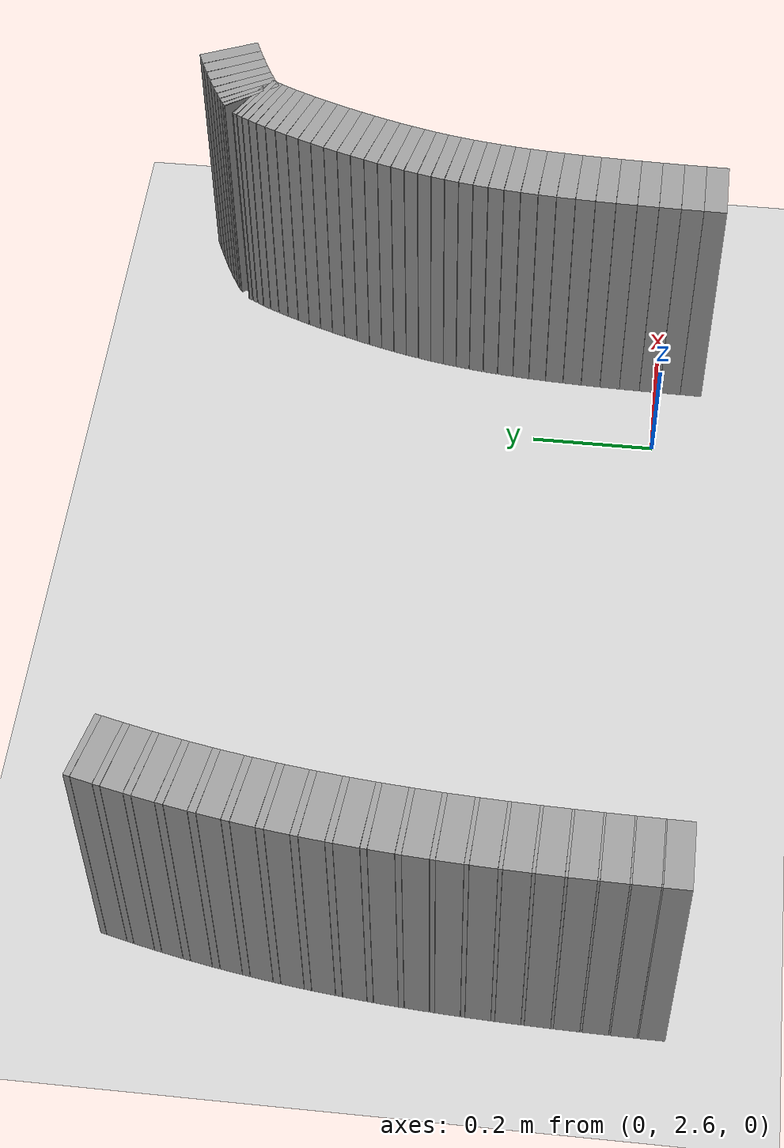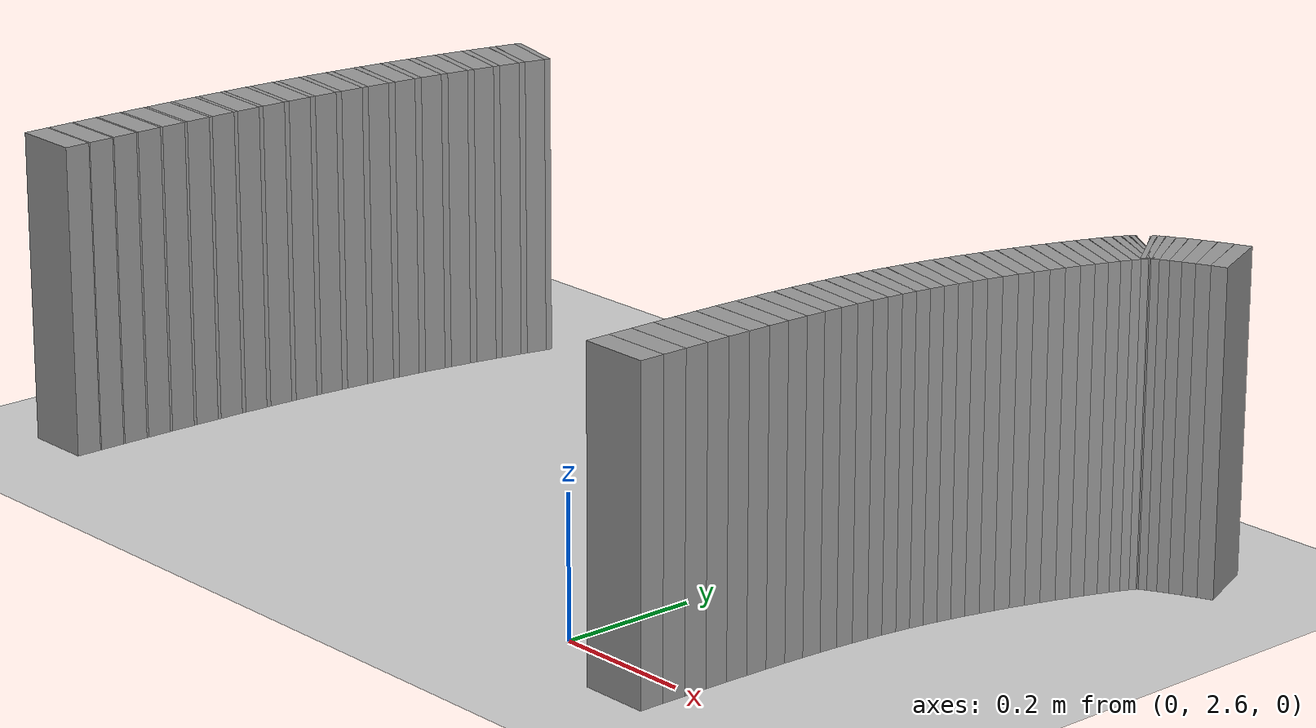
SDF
<sdf version="1.6">
 <world name="default">
  <include><uri>model://ground_plane</uri></include>
  <include><uri>model://sun</uri></include>
  <model name="wall_901_outward">
   <static>true</static>
   <link name="link">
    <collision name="collision">
     <geometry><box><size>0.022596866350349888 0.1 0.45</size></box></geometry>
    </collision>
    <visual name="visual">
     <geometry><box><size>0.022596866350349888 0.1 0.45</size></box></geometry>
     <material>
      <script><uri>file://media/materials/scripts/gazebo.material</uri><name>Gazebo/Gray</name></script>
     </material>
    </visual>
   </link>
   <pose>0.41239674245466185 3.35695061110063 0.225 0 0 -2.737331393825376</pose>
  </model>
  <model name="wall_902_outward">
   <static>true</static>
   <link name="link">
    <collision name="collision">
     <geometry><box><size>0.02105330743478873 0.1 0.45</size></box></geometry>
    </collision>
    <visual name="visual">
     <geometry><box><size>0.02105330743478873 0.1 0.45</size></box></geometry>
     <material>
      <script><uri>file://media/materials/scripts/gazebo.material</uri><name>Gazebo/Gray</name></script>
     </material>
    </visual>
   </link>
   <pose>0.3924247515282354 3.3481531154860154 0.225 0 0 -2.7152350687716185</pose>
  </model>
  <model name="wall_903_outward">
   <static>true</static>
   <link name="link">
    <collision name="collision">
     <geometry><box><size>0.019233025957767963 0.1 0.45</size></box></geometry>
    </collision>
    <visual name="visual">
     <geometry><box><size>0.019233025957767963 0.1 0.45</size></box></geometry>
     <material>
      <script><uri>file://media/materials/scripts/gazebo.material</uri><name>Gazebo/Gray</name></script>
     </material>
    </visual>
   </link>
   <pose>0.3741773984050438 3.339624981435068 0.225 0 0 -2.692526856154919</pose>
  </model>
  <model name="wall_904_outward">
   <static>true</static>
   <link name="link">
    <collision name="collision">
     <geometry><box><size>0.01713305821972316 0.1 0.45</size></box></geometry>
    </collision>
    <visual name="visual">
     <geometry><box><size>0.01713305821972316 0.1 0.45</size></box></geometry>
     <material>
      <script><uri>file://media/materials/scripts/gazebo.material</uri><name>Gazebo/Gray</name></script>
     </material>
    </visual>
   </link>
   <pose>0.3578879541564204 3.3315484569999003 0.225 0 0 -2.6686969031732763</pose>
  </model>
  <model name="wall_905_outward">
   <static>true</static>
   <link name="link">
    <collision name="collision">
     <geometry><box><size>0.014756236926201214 0.1 0.45</size></box></geometry>
    </collision>
    <visual name="visual">
     <geometry><box><size>0.014756236926201214 0.1 0.45</size></box></geometry>
     <material>
      <script><uri>file://media/materials/scripts/gazebo.material</uri><name>Gazebo/Gray</name></script>
     </material>
    </visual>
   </link>
   <pose>0.3437809723634252 3.3241198784027364 0.225 0 0 -2.643204907184068</pose>
  </model>
  <model name="wall_906_outward">
   <static>true</static>
   <link name="link">
    <collision name="collision">
     <geometry><box><size>0.012143708704817393 0.1 0.45</size></box></geometry>
    </collision>
    <visual name="visual">
     <geometry><box><size>0.012143708704817393 0.1 0.45</size></box></geometry>
     <material>
      <script><uri>file://media/materials/scripts/gazebo.material</uri><name>Gazebo/Gray</name></script>
     </material>
    </visual>
   </link>
   <pose>0.33204960698667035 3.3175439809606386 0.225 0 0 -2.615490224212202</pose>
  </model>
  <model name="wall_907_outward">
   <static>true</static>
   <link name="link">
    <collision name="collision">
     <geometry><box><size>0.009383032471270836 0.1 0.45</size></box></geometry>
    </collision>
    <visual name="visual">
     <geometry><box><size>0.009383032471270836 0.1 0.45</size></box></geometry>
     <material>
      <script><uri>file://media/materials/scripts/gazebo.material</uri><name>Gazebo/Gray</name></script>
     </material>
    </visual>
   </link>
   <pose>0.3228152456745705 3.312016740172933 0.225 0 0 -2.5850884539471894</pose>
  </model>
  <model name="wall_908_outward">
   <static>true</static>
   <link name="link">
    <collision name="collision">
     <geometry><box><size>0.006567193483375637 0.1 0.45</size></box></geometry>
    </collision>
    <visual name="visual">
     <geometry><box><size>0.006567193483375637 0.1 0.45</size></box></geometry>
     <material>
      <script><uri>file://media/materials/scripts/gazebo.material</uri><name>Gazebo/Gray</name></script>
     </material>
    </visual>
   </link>
   <pose>0.31610305018646856 3.307711900378005 0.225 0 0 -2.551659877978313</pose>
  </model>
  <model name="wall_909_outward">
   <static>true</static>
   <link name="link">
    <collision name="collision">
     <geometry><box><size>5.8517495426354484e-05 0.1 0.45</size></box></geometry>
    </collision>
    <visual name="visual">
     <geometry><box><size>5.8517495426354484e-05 0.1 0.45</size></box></geometry>
     <material>
      <script><uri>file://media/materials/scripts/gazebo.material</uri><name>Gazebo/Gray</name></script>
     </material>
    </visual>
   </link>
   <pose>0.31335075308378557 3.305868061194558 0.225 0 0 -2.514983812050908</pose>
  </model>
  <model name="wall_910_outward">
   <static>true</static>
   <link name="link">
    <collision name="collision">
     <geometry><box><size>0.00033343279964273206 0.1 0.45</size></box></geometry>
    </collision>
    <visual name="visual">
     <geometry><box><size>0.00033343279964273206 0.1 0.45</size></box></geometry>
     <material>
      <script><uri>file://media/materials/scripts/gazebo.material</uri><name>Gazebo/Gray</name></script>
     </material>
    </visual>
   </link>
   <pose>0.3132395574453338 3.30570899221952 0.225 0 0 -2.123295347509265</pose>
  </model>
  <model name="wall_911_outward">
   <static>true</static>
   <link name="link">
    <collision name="collision">
     <geometry><box><size>0.006385380744075722 0.1 0.45</size></box></geometry>
    </collision>
    <visual name="visual">
     <geometry><box><size>0.006385380744075722 0.1 0.45</size></box></geometry>
     <material>
      <script><uri>file://media/materials/scripts/gazebo.material</uri><name>Gazebo/Gray</name></script>
     </material>
    </visual>
   </link>
   <pose>0.31157509559732816 3.3027910314788933 0.225 0 0 -2.0874004427337227</pose>
  </model>
  <model name="wall_912_outward">
   <static>true</static>
   <link name="link">
    <collision name="collision">
     <geometry><box><size>0.008977632941338609 0.1 0.45</size></box></geometry>
    </collision>
    <visual name="visual">
     <geometry><box><size>0.008977632941338609 0.1 0.45</size></box></geometry>
     <material>
      <script><uri>file://media/materials/scripts/gazebo.material</uri><name>Gazebo/Gray</name></script>
     </material>
    </visual>
   </link>
   <pose>0.30790882375972006 3.2960420393448526 0.225 0 0 -2.0549357301943543</pose>
  </model>
  <model name="wall_913_outward">
   <static>true</static>
   <link name="link">
    <collision name="collision">
     <geometry><box><size>0.011512095864613698 0.1 0.45</size></box></geometry>
    </collision>
    <visual name="visual">
     <geometry><box><size>0.011512095864613698 0.1 0.45</size></box></geometry>
     <material>
      <script><uri>file://media/materials/scripts/gazebo.material</uri><name>Gazebo/Gray</name></script>
     </material>
    </visual>
   </link>
   <pose>0.30328947688679553 3.2868988953667255 0.225 0 0 -2.025888254361011</pose>
  </model>
  <model name="wall_914_outward">
   <static>true</static>
   <link name="link">
    <collision name="collision">
     <geometry><box><size>0.013911058944585594 0.1 0.45</size></box></geometry>
    </collision>
    <visual name="visual">
     <geometry><box><size>0.013911058944585594 0.1 0.45</size></box></geometry>
     <material>
      <script><uri>file://media/materials/scripts/gazebo.material</uri><name>Gazebo/Gray</name></script>
     </material>
    </visual>
   </link>
   <pose>0.2978644702907151 3.275404252363166 0.225 0 0 -2.000070135066954</pose>
  </model>
  <model name="wall_915_outward">
   <static>true</static>
   <link name="link">
    <collision name="collision">
     <geometry><box><size>0.016108205087630497 0.1 0.45</size></box></geometry>
    </collision>
    <visual name="visual">
     <geometry><box><size>0.016108205087630497 0.1 0.45</size></box></geometry>
     <material>
      <script><uri>file://media/materials/scripts/gazebo.material</uri><name>Gazebo/Gray</name></script>
     </material>
    </visual>
   </link>
   <pose>0.2917851040718751 3.2616819621561666 0.225 0 0 -1.977273795379586</pose>
  </model>
  <model name="wall_916_outward">
   <static>true</static>
   <link name="link">
    <collision name="collision">
     <geometry><box><size>0.018050668148949803 0.1 0.45</size></box></geometry>
    </collision>
    <visual name="visual">
     <geometry><box><size>0.018050668148949803 0.1 0.45</size></box></geometry>
     <material>
      <script><uri>file://media/materials/scripts/gazebo.material</uri><name>Gazebo/Gray</name></script>
     </material>
    </visual>
   </link>
   <pose>0.2851998278615824 3.2459240479868035 0.225 0 0 -1.9571510241263168</pose>
  </model>
  <model name="wall_917_outward">
   <static>true</static>
   <link name="link">
    <collision name="collision">
     <geometry><box><size>0.01970030929350284 0.1 0.45</size></box></geometry>
    </collision>
    <visual name="visual">
     <geometry><box><size>0.01970030929350284 0.1 0.45</size></box></geometry>
     <material>
      <script><uri>file://media/materials/scripts/gazebo.material</uri><name>Gazebo/Gray</name></script>
     </material>
    </visual>
   </link>
   <pose>0.2782502250788681 3.228375289012065 0.225 0 0 -1.9393549917008372</pose>
  </model>
  <model name="wall_918_outward">
   <static>true</static>
   <link name="link">
    <collision name="collision">
     <geometry><box><size>0.021024766863608067 0.1 0.45</size></box></geometry>
    </collision>
    <visual name="visual">
     <geometry><box><size>0.021024766863608067 0.1 0.45</size></box></geometry>
     <material>
      <script><uri>file://media/materials/scripts/gazebo.material</uri><name>Gazebo/Gray</name></script>
     </material>
    </visual>
   </link>
   <pose>0.2710708051794596 3.209321086457781 0.225 0 0 -1.9234324250133157</pose>
  </model>
  <model name="wall_919_outward">
   <static>true</static>
   <link name="link">
    <collision name="collision">
     <geometry><box><size>0.02201623335345695 0.1 0.45</size></box></geometry>
    </collision>
    <visual name="visual">
     <geometry><box><size>0.02201623335345695 0.1 0.45</size></box></geometry>
     <material>
      <script><uri>file://media/materials/scripts/gazebo.material</uri><name>Gazebo/Gray</name></script>
     </material>
    </visual>
   </link>
   <pose>0.2637883889834097 3.1890708022095042 0.225 0 0 -1.9089332878310066</pose>
  </model>
  <model name="wall_920_outward">
   <static>true</static>
   <link name="link">
    <collision name="collision">
     <geometry><box><size>0.02268796565250356 0.1 0.45</size></box></geometry>
    </collision>
    <visual name="visual">
     <geometry><box><size>0.02268796565250356 0.1 0.45</size></box></geometry>
     <material>
      <script><uri>file://media/materials/scripts/gazebo.material</uri><name>Gazebo/Gray</name></script>
     </material>
    </visual>
   </link>
   <pose>0.25651905092370275 3.167934338623913 0.225 0 0 -1.8953666653116565</pose>
  </model>
  <model name="wall_921_outward">
   <static>true</static>
   <link name="link">
    <collision name="collision">
     <geometry><box><size>0.02305148211889506 0.1 0.45</size></box></geometry>
    </collision>
    <visual name="visual">
     <geometry><box><size>0.02305148211889506 0.1 0.45</size></box></geometry>
     <material>
      <script><uri>file://media/materials/scripts/gazebo.material</uri><name>Gazebo/Gray</name></script>
     </material>
    </visual>
   </link>
   <pose>0.24936891116997362 3.1462115982767314 0.225 0 0 -1.8822998094263723</pose>
  </model>
  <model name="wall_922_outward">
   <static>true</static>
   <link name="link">
    <collision name="collision">
     <geometry><box><size>0.02313152804479884 0.1 0.45</size></box></geometry>
    </collision>
    <visual name="visual">
     <geometry><box><size>0.02313152804479884 0.1 0.45</size></box></geometry>
     <material>
      <script><uri>file://media/materials/scripts/gazebo.material</uri><name>Gazebo/Gray</name></script>
     </material>
    </visual>
   </link>
   <pose>0.24243566142224462 3.124186046719479 0.225 0 0 -1.8692406733208606</pose>
  </model>
  <model name="wall_923_outward">
   <static>true</static>
   <link name="link">
    <collision name="collision">
     <geometry><box><size>0.022994218521434108 0.1 0.45</size></box></geometry>
    </collision>
    <visual name="visual">
     <geometry><box><size>0.022994218521434108 0.1 0.45</size></box></geometry>
     <material>
      <script><uri>file://media/materials/scripts/gazebo.material</uri><name>Gazebo/Gray</name></script>
     </material>
    </visual>
   </link>
   <pose>0.23580250807824732 3.102098191595596 0.225 0 0 -1.8557900986289473</pose>
  </model>
  <model name="wall_924_outward">
   <static>true</static>
   <link name="link">
    <collision name="collision">
     <geometry><box><size>0.022702220539631838 0.1 0.45</size></box></geometry>
    </collision>
    <visual name="visual">
     <geometry><box><size>0.022702220539631838 0.1 0.45</size></box></geometry>
     <material>
      <script><uri>file://media/materials/scripts/gazebo.material</uri><name>Gazebo/Gray</name></script>
     </material>
    </visual>
   </link>
   <pose>0.22953324804076197 3.0801274985704175 0.225 0 0 -1.841631247528768</pose>
  </model>
  <model name="wall_925_outward">
   <static>true</static>
   <link name="link">
    <collision name="collision">
     <geometry><box><size>0.022331614966666632 0.1 0.45</size></box></geometry>
    </collision>
    <visual name="visual">
     <geometry><box><size>0.022331614966666632 0.1 0.45</size></box></geometry>
     <material>
      <script><uri>file://media/materials/scripts/gazebo.material</uri><name>Gazebo/Gray</name></script>
     </material>
    </visual>
   </link>
   <pose>0.2236720599062773 3.058387463550103 0.225 0 0 -1.8265214145545385</pose>
  </model>
  <model name="wall_926_outward">
   <static>true</static>
   <link name="link">
    <collision name="collision">
     <geometry><box><size>0.02197774465076249 0.1 0.45</size></box></geometry>
    </collision>
    <visual name="visual">
     <geometry><box><size>0.02197774465076249 0.1 0.45</size></box></geometry>
     <material>
      <script><uri>file://media/materials/scripts/gazebo.material</uri><name>Gazebo/Gray</name></script>
     </material>
    </visual>
   </link>
   <pose>0.21824036063666016 3.036909698262149 0.225 0 0 -1.8103521031712857</pose>
  </model>
  <model name="wall_927_outward">
   <static>true</static>
   <link name="link">
    <collision name="collision">
     <geometry><box><size>0.021725701463480032 0.1 0.45</size></box></geometry>
    </collision>
    <visual name="visual">
     <geometry><box><size>0.021725701463480032 0.1 0.45</size></box></geometry>
     <material>
      <script><uri>file://media/materials/scripts/gazebo.material</uri><name>Gazebo/Gray</name></script>
     </material>
    </visual>
   </link>
   <pose>0.21323737790647734 3.015639233272886 0.225 0 0 -1.7931594559181645</pose>
  </model>
  <model name="wall_928_outward">
   <static>true</static>
   <link name="link">
    <collision name="collision">
     <geometry><box><size>0.02164543096430768 0.1 0.45</size></box></geometry>
    </collision>
    <visual name="visual">
     <geometry><box><size>0.02164543096430768 0.1 0.45</size></box></geometry>
     <material>
      <script><uri>file://media/materials/scripts/gazebo.material</uri><name>Gazebo/Gray</name></script>
     </material>
    </visual>
   </link>
   <pose>0.20864600509068432 2.994446198568183 0.225 0 0 -1.7750963639412451</pose>
  </model>
  <model name="wall_929_outward">
   <static>true</static>
   <link name="link">
    <collision name="collision">
     <geometry><box><size>0.021794638171937955 0.1 0.45</size></box></geometry>
    </collision>
    <visual name="visual">
     <geometry><box><size>0.021794638171937955 0.1 0.45</size></box></geometry>
     <material>
      <script><uri>file://media/materials/scripts/gazebo.material</uri><name>Gazebo/Gray</name></script>
     </material>
    </visual>
   </link>
   <pose>0.20443912056908775 2.973138433164868 0.225 0 0 -1.756415182884582</pose>
  </model>
  <model name="wall_930_outward">
   <static>true</static>
   <link name="link">
    <collision name="collision">
     <geometry><box><size>0.022205526378022495 0.1 0.45</size></box></geometry>
    </collision>
    <visual name="visual">
     <geometry><box><size>0.022205526378022495 0.1 0.45</size></box></geometry>
     <material>
      <script><uri>file://media/materials/scripts/gazebo.material</uri><name>Gazebo/Gray</name></script>
     </material>
    </visual>
   </link>
   <pose>0.20058599444439623 2.951479402460767 0.225 0 0 -1.737469219337726</pose>
  </model>
  <model name="wall_931_outward">
   <static>true</static>
   <link name="link">
    <collision name="collision">
     <geometry><box><size>0.022873744378428918 0.1 0.45</size></box></geometry>
    </collision>
    <visual name="visual">
     <geometry><box><size>0.022873744378428918 0.1 0.45</size></box></geometry>
     <material>
      <script><uri>file://media/materials/scripts/gazebo.material</uri><name>Gazebo/Gray</name></script>
     </material>
    </visual>
   </link>
   <pose>0.1970593319743536 2.92921838755029 0.225 0 0 -1.7186375841699517</pose>
  </model>
  <model name="wall_932_outward">
   <static>true</static>
   <link name="link">
    <collision name="collision">
     <geometry><box><size>0.023778288119690603 0.1 0.45</size></box></geometry>
    </collision>
    <visual name="visual">
     <geometry><box><size>0.023778288119690603 0.1 0.45</size></box></geometry>
     <material>
      <script><uri>file://media/materials/scripts/gazebo.material</uri><name>Gazebo/Gray</name></script>
     </material>
    </visual>
   </link>
   <pose>0.19383931766097415 2.9061166821357713 0.225 0 0 -1.700294723006217</pose>
  </model>
  <model name="wall_933_outward">
   <static>true</static>
   <link name="link">
    <collision name="collision">
     <geometry><box><size>0.024868578649172017 0.1 0.45</size></box></geometry>
    </collision>
    <visual name="visual">
     <geometry><box><size>0.024868578649172017 0.1 0.45</size></box></geometry>
     <material>
      <script><uri>file://media/materials/scripts/gazebo.material</uri><name>Gazebo/Gray</name></script>
     </material>
    </visual>
   </link>
   <pose>0.19091428676749078 2.8819707025351127 0.225 0 0 -1.682794281315348</pose>
  </model>
  <model name="wall_934_outward">
   <static>true</static>
   <link name="link">
    <collision name="collision">
     <geometry><box><size>0.026091416947496435 0.1 0.45</size></box></geometry>
    </collision>
    <visual name="visual">
     <geometry><box><size>0.026091416947496435 0.1 0.45</size></box></geometry>
     <material>
      <script><uri>file://media/materials/scripts/gazebo.material</uri><name>Gazebo/Gray</name></script>
     </material>
    </visual>
   </link>
   <pose>0.18827927893455984 2.8566281806164415 0.225 0 0 -1.6663987562147833</pose>
  </model>
  <model name="wall_935_outward">
   <static>true</static>
   <link name="link">
    <collision name="collision">
     <geometry><box><size>0.027393402126610136 0.1 0.45</size></box></geometry>
    </collision>
    <visual name="visual">
     <geometry><box><size>0.027393402126610136 0.1 0.45</size></box></geometry>
     <material>
      <script><uri>file://media/materials/scripts/gazebo.material</uri><name>Gazebo/Gray</name></script>
     </material>
    </visual>
   </link>
   <pose>0.18593201673004534 2.829989744148383 0.225 0 0 -1.6513377699728902</pose>
  </model>
  <model name="wall_936_outward">
   <static>true</static>
   <link name="link">
    <collision name="collision">
     <geometry><box><size>0.028709789672378496 0.1 0.45</size></box></geometry>
    </collision>
    <visual name="visual">
     <geometry><box><size>0.028709789672378496 0.1 0.45</size></box></geometry>
     <material>
      <script><uri>file://media/materials/scripts/gazebo.material</uri><name>Gazebo/Gray</name></script>
     </material>
    </visual>
   </link>
   <pose>0.1838696096548817 2.802014715477411 0.225 0 0 -1.6377536498051013</pose>
  </model>
  <model name="wall_937_outward">
   <static>true</static>
   <link name="link">
    <collision name="collision">
     <geometry><box><size>0.029987319688165086 0.1 0.45</size></box></geometry>
    </collision>
    <visual name="visual">
     <geometry><box><size>0.029987319688165086 0.1 0.45</size></box></geometry>
     <material>
      <script><uri>file://media/materials/scripts/gazebo.material</uri><name>Gazebo/Gray</name></script>
     </material>
    </visual>
   </link>
   <pose>0.18208632624156762 2.772720922516728 0.225 0 0 -1.6257028479287146</pose>
  </model>
  <model name="wall_938_outward">
   <static>true</static>
   <link name="link">
    <collision name="collision">
     <geometry><box><size>0.03119380990762205 0.1 0.45</size></box></geometry>
    </collision>
    <visual name="visual">
     <geometry><box><size>0.03119380990762205 0.1 0.45</size></box></geometry>
     <material>
      <script><uri>file://media/materials/scripts/gazebo.material</uri><name>Gazebo/Gray</name></script>
     </material>
    </visual>
   </link>
   <pose>0.18057140729792528 2.7421683154216336 0.225 0 0 -1.6151839885941528</pose>
  </model>
  <model name="wall_939_outward">
   <static>true</static>
   <link name="link">
    <collision name="collision">
     <geometry><box><size>0.032305340117180316 0.1 0.45</size></box></geometry>
    </collision>
    <visual name="visual">
     <geometry><box><size>0.032305340117180316 0.1 0.45</size></box></geometry>
     <material>
      <script><uri>file://media/materials/scripts/gazebo.material</uri><name>Gazebo/Gray</name></script>
     </material>
    </visual>
   </link>
   <pose>0.17930817851051845 2.7104442036995122 0.225 0 0 -1.6061629282107308</pose>
  </model>
  <model name="wall_940_outward">
   <static>true</static>
   <link name="link">
    <collision name="collision">
     <geometry><box><size>0.033298951209655044 0.1 0.45</size></box></geometry>
    </collision>
    <visual name="visual">
     <geometry><box><size>0.033298951209655044 0.1 0.45</size></box></geometry>
     <material>
      <script><uri>file://media/materials/scripts/gazebo.material</uri><name>Gazebo/Gray</name></script>
     </material>
    </visual>
   </link>
   <pose>0.17827482661066388 2.677658575718694 0.225 0 0 -1.5985608845408543</pose>
  </model>
  <model name="wall_941_outward">
   <static>true</static>
   <link name="link">
    <collision name="collision">
     <geometry><box><size>0.03416466688450906 0.1 0.45</size></box></geometry>
    </collision>
    <visual name="visual">
     <geometry><box><size>0.03416466688450906 0.1 0.45</size></box></geometry>
     <material>
      <script><uri>file://media/materials/scripts/gazebo.material</uri><name>Gazebo/Gray</name></script>
     </material>
    </visual>
   </link>
   <pose>0.177446100855572 2.6439371160464367 0.225 0 0 -1.5922540477885891</pose>
  </model>
  <model name="wall_942_outward">
   <static>true</static>
   <link name="link">
    <collision name="collision">
     <geometry><box><size>0.03491015771120434 0.1 0.45</size></box></geometry>
    </collision>
    <visual name="visual">
     <geometry><box><size>0.03491015771120434 0.1 0.45</size></box></geometry>
     <material>
      <script><uri>file://media/materials/scripts/gazebo.material</uri><name>Gazebo/Gray</name></script>
     </material>
    </visual>
   </link>
   <pose>0.1767949139163054 2.609405957648602 0.225 0 0 -1.5871056053057662</pose>
  </model>
  <model name="wall_943_outward">
   <static>true</static>
   <link name="link">
    <collision name="collision">
     <geometry><box><size>0.03554173892819867 0.1 0.45</size></box></geometry>
    </collision>
    <visual name="visual">
     <geometry><box><size>0.03554173892819867 0.1 0.45</size></box></geometry>
     <material>
      <script><uri>file://media/materials/scripts/gazebo.material</uri><name>Gazebo/Gray</name></script>
     </material>
    </visual>
   </link>
   <pose>0.1762936190134171 2.5741836511387985 0.225 0 0 -1.5829866783436335</pose>
  </model>
  <model name="wall_944_outward">
   <static>true</static>
   <link name="link">
    <collision name="collision">
     <geometry><box><size>0.03605706394356979 0.1 0.45</size></box></geometry>
    </collision>
    <visual name="visual">
     <geometry><box><size>0.03605706394356979 0.1 0.45</size></box></geometry>
     <material>
      <script><uri>file://media/materials/scripts/gazebo.material</uri><name>Gazebo/Gray</name></script>
     </material>
    </visual>
   </link>
   <pose>0.17591540313577228 2.53838629426794 0.225 0 0 -1.57975935610797</pose>
  </model>
  <model name="wall_1449_inward">
   <static>true</static>
   <link name="link">
    <collision name="collision">
     <geometry><box><size>0.00970148114500014 0.1 0.45</size></box></geometry>
    </collision>
    <visual name="visual">
     <geometry><box><size>0.00970148114500014 0.1 0.45</size></box></geometry>
     <material>
      <script><uri>file://media/materials/scripts/gazebo.material</uri><name>Gazebo/Gray</name></script>
     </material>
    </visual>
   </link>
   <pose>-0.9425444864866522 3.341725236280392 0.225 0 0 -1.8184367588628998</pose>
  </model>
  <model name="wall_1450_inward">
   <static>true</static>
   <link name="link">
    <collision name="collision">
     <geometry><box><size>0.03198656498162439 0.1 0.45</size></box></geometry>
    </collision>
    <visual name="visual">
     <geometry><box><size>0.03198656498162439 0.1 0.45</size></box></geometry>
     <material>
      <script><uri>file://media/materials/scripts/gazebo.material</uri><name>Gazebo/Gray</name></script>
     </material>
    </visual>
   </link>
   <pose>-0.9475282296613354 3.321485904998183 0.225 0 0 -1.8103521031712844</pose>
  </model>
  <model name="wall_1451_inward">
   <static>true</static>
   <link name="link">
    <collision name="collision">
     <geometry><box><size>0.010315461304215127 0.1 0.45</size></box></geometry>
    </collision>
    <visual name="visual">
     <geometry><box><size>0.010315461304215127 0.1 0.45</size></box></geometry>
     <material>
      <script><uri>file://media/materials/scripts/gazebo.material</uri><name>Gazebo/Gray</name></script>
     </material>
    </visual>
   </link>
   <pose>-0.9525036379814557 3.3009285565946827 0.225 0 0 -1.8017557795447179</pose>
  </model>
  <model name="wall_1452_inward">
   <static>true</static>
   <link name="link">
    <collision name="collision">
     <geometry><box><size>0.03230269762769586 0.1 0.45</size></box></geometry>
    </collision>
    <visual name="visual">
     <geometry><box><size>0.03230269762769586 0.1 0.45</size></box></geometry>
     <material>
      <script><uri>file://media/materials/scripts/gazebo.material</uri><name>Gazebo/Gray</name></script>
     </material>
    </visual>
   </link>
   <pose>-0.9572462430559248 3.280154091284791 0.225 0 0 -1.7931594559181672</pose>
  </model>
  <model name="wall_1453_inward">
   <static>true</static>
   <link name="link">
    <collision name="collision">
     <geometry><box><size>0.010837707848234391 0.1 0.45</size></box></geometry>
    </collision>
    <visual name="visual">
     <geometry><box><size>0.010837707848234391 0.1 0.45</size></box></geometry>
     <material>
      <script><uri>file://media/materials/scripts/gazebo.material</uri><name>Gazebo/Gray</name></script>
     </material>
    </visual>
   </link>
   <pose>-0.961955447917895 3.259104390652163 0.225 0 0 -1.7841279099296992</pose>
  </model>
  <model name="wall_1454_inward">
   <static>true</static>
   <link name="link">
    <collision name="collision">
     <geometry><box><size>0.03266902321041281 0.1 0.45</size></box></geometry>
    </collision>
    <visual name="visual">
     <geometry><box><size>0.03266902321041281 0.1 0.45</size></box></geometry>
     <material>
      <script><uri>file://media/materials/scripts/gazebo.material</uri><name>Gazebo/Gray</name></script>
     </material>
    </visual>
   </link>
   <pose>-0.9664166872871729 3.237813570208095 0.225 0 0 -1.7750963639412507</pose>
  </model>
  <model name="wall_1455_inward">
   <static>true</static>
   <link name="link">
    <collision name="collision">
     <geometry><box><size>0.011208545647700144 0.1 0.45</size></box></geometry>
    </collision>
    <visual name="visual">
     <geometry><box><size>0.011208545647700144 0.1 0.45</size></box></geometry>
     <material>
      <script><uri>file://media/materials/scripts/gazebo.material</uri><name>Gazebo/Gray</name></script>
     </material>
    </visual>
   </link>
   <pose>-0.9708163600256534 3.2163206607900245 0.225 0 0 -1.7657557734129228</pose>
  </model>
  <model name="wall_1456_inward">
   <static>true</static>
   <link name="link">
    <collision name="collision">
     <geometry><box><size>0.0330831145679106 0.1 0.45</size></box></geometry>
    </collision>
    <visual name="visual">
     <geometry><box><size>0.0330831145679106 0.1 0.45</size></box></geometry>
     <material>
      <script><uri>file://media/materials/scripts/gazebo.material</uri><name>Gazebo/Gray</name></script>
     </material>
    </visual>
   </link>
   <pose>-0.9749548812887046 3.1945651478124253 0.225 0 0 -1.7564151828845833</pose>
  </model>
  <model name="wall_1457_inward">
   <static>true</static>
   <link name="link">
    <collision name="collision">
     <geometry><box><size>0.01136740811275694 0.1 0.45</size></box></geometry>
    </collision>
    <visual name="visual">
     <geometry><box><size>0.01136740811275694 0.1 0.45</size></box></geometry>
     <material>
      <script><uri>file://media/materials/scripts/gazebo.material</uri><name>Gazebo/Gray</name></script>
     </material>
    </visual>
   </link>
   <pose>-0.9790036968056204 3.172711981045313 0.225 0 0 -1.7469422011111484</pose>
  </model>
  <model name="wall_1458_inward">
   <static>true</static>
   <link name="link">
    <collision name="collision">
     <geometry><box><size>0.0335391429773543 0.1 0.45</size></box></geometry>
    </collision>
    <visual name="visual">
     <geometry><box><size>0.0335391429773543 0.1 0.45</size></box></geometry>
     <material>
      <script><uri>file://media/materials/scripts/gazebo.material</uri><name>Gazebo/Gray</name></script>
     </material>
    </visual>
   </link>
   <pose>-0.9827817986351742 3.150579042330195 0.225 0 0 -1.7374692193377212</pose>
  </model>
  <model name="wall_1459_inward">
   <static>true</static>
   <link name="link">
    <collision name="collision">
     <geometry><box><size>0.01129881414460616 0.1 0.45</size></box></geometry>
    </collision>
    <visual name="visual">
     <geometry><box><size>0.01129881414460616 0.1 0.45</size></box></geometry>
     <material>
      <script><uri>file://media/materials/scripts/gazebo.material</uri><name>Gazebo/Gray</name></script>
     </material>
    </visual>
   </link>
   <pose>-0.9864486607117288 3.1284621636391687 0.225 0 0 -1.7280534017538478</pose>
  </model>
  <model name="wall_1460_inward">
   <static>true</static>
   <link name="link">
    <collision name="collision">
     <geometry><box><size>0.03402641453702302 0.1 0.45</size></box></geometry>
    </collision>
    <visual name="visual">
     <geometry><box><size>0.03402641453702302 0.1 0.45</size></box></geometry>
     <material>
      <script><uri>file://media/materials/scripts/gazebo.material</uri><name>Gazebo/Gray</name></script>
     </material>
    </visual>
   </link>
   <pose>-0.9898395140690529 3.1060548505238774 0.225 0 0 -1.71863758416995</pose>
  </model>
  <model name="wall_1461_inward">
   <static>true</static>
   <link name="link">
    <collision name="collision">
     <geometry><box><size>0.01100556240765865 0.1 0.45</size></box></geometry>
    </collision>
    <visual name="visual">
     <geometry><box><size>0.01100556240765865 0.1 0.45</size></box></geometry>
     <material>
      <script><uri>file://media/materials/scripts/gazebo.material</uri><name>Gazebo/Gray</name></script>
     </material>
    </visual>
   </link>
   <pose>-0.9931062418798068 3.0837772754427215 0.225 0 0 -1.7094661535880966</pose>
  </model>
  <model name="wall_1462_inward">
   <static>true</static>
   <link name="link">
    <collision name="collision">
     <geometry><box><size>0.034531567271128265 0.1 0.45</size></box></geometry>
    </collision>
    <visual name="visual">
     <geometry><box><size>0.034531567271128265 0.1 0.45</size></box></geometry>
     <material>
      <script><uri>file://media/materials/scripts/gazebo.material</uri><name>Gazebo/Gray</name></script>
     </material>
    </visual>
   </link>
   <pose>-0.9960965156678581 3.0612061032133235 0.225 0 0 -1.7002947230062162</pose>
  </model>
  <model name="wall_1463_inward">
   <static>true</static>
   <link name="link">
    <collision name="collision">
     <geometry><box><size>0.01050013102051442 0.1 0.45</size></box></geometry>
    </collision>
    <visual name="visual">
     <geometry><box><size>0.01050013102051442 0.1 0.45</size></box></geometry>
     <material>
      <script><uri>file://media/materials/scripts/gazebo.material</uri><name>Gazebo/Gray</name></script>
     </material>
    </visual>
   </link>
   <pose>-0.9989585594179224 3.038873050849131 0.225 0 0 -1.691544502160799</pose>
  </model>
  <model name="wall_1464_inward">
   <static>true</static>
   <link name="link">
    <collision name="collision">
     <geometry><box><size>0.03503761287153397 0.1 0.45</size></box></geometry>
    </collision>
    <visual name="visual">
     <geometry><box><size>0.03503761287153397 0.1 0.45</size></box></geometry>
     <material>
      <script><uri>file://media/materials/scripts/gazebo.material</uri><name>Gazebo/Gray</name></script>
     </material>
    </visual>
   </link>
   <pose>-1.0015489270672746 3.016252164858564 0.225 0 0 -1.6827942813153447</pose>
  </model>
  <model name="wall_1465_inward">
   <static>true</static>
   <link name="link">
    <collision name="collision">
     <geometry><box><size>0.009837204877352386 0.1 0.45</size></box></geometry>
    </collision>
    <visual name="visual">
     <geometry><box><size>0.009837204877352386 0.1 0.45</size></box></geometry>
     <material>
      <script><uri>file://media/materials/scripts/gazebo.material</uri><name>Gazebo/Gray</name></script>
     </material>
    </visual>
   </link>
   <pose>-1.0040165337893558 2.9939509890304006 0.225 0 0 -1.6745965187650738</pose>
  </model>
  <model name="wall_1466_inward">
   <static>true</static>
   <link name="link">
    <collision name="collision">
     <geometry><box><size>0.03552856594682145 0.1 0.45</size></box></geometry>
    </collision>
    <visual name="visual">
     <geometry><box><size>0.03552856594682145 0.1 0.45</size></box></geometry>
     <material>
      <script><uri>file://media/materials/scripts/gazebo.material</uri><name>Gazebo/Gray</name></script>
     </material>
    </visual>
   </link>
   <pose>-1.0062218920893988 2.9713756969281935 0.225 0 0 -1.6663987562147828</pose>
  </model>
  <model name="wall_1467_inward">
   <static>true</static>
   <link name="link">
    <collision name="collision">
     <geometry><box><size>0.00903650633704478 0.1 0.45</size></box></geometry>
    </collision>
    <visual name="visual">
     <geometry><box><size>0.00903650633704478 0.1 0.45</size></box></geometry>
     <material>
      <script><uri>file://media/materials/scripts/gazebo.material</uri><name>Gazebo/Gray</name></script>
     </material>
    </visual>
   </link>
   <pose>-1.0083150319081322 2.94919179215408 0.225 0 0 -1.6588682630938316</pose>
  </model>
  <model name="wall_1468_inward">
   <static>true</static>
   <link name="link">
    <collision name="collision">
     <geometry><box><size>0.03598708212731013 0.1 0.45</size></box></geometry>
    </collision>
    <visual name="visual">
     <geometry><box><size>0.03598708212731013 0.1 0.45</size></box></geometry>
     <material>
      <script><uri>file://media/materials/scripts/gazebo.material</uri><name>Gazebo/Gray</name></script>
     </material>
    </visual>
   </link>
   <pose>-1.0101601084131682 2.9267558397135707 0.225 0 0 -1.6513377699728877</pose>
  </model>
  <model name="wall_1469_inward">
   <static>true</static>
   <link name="link">
    <collision name="collision">
     <geometry><box><size>0.00815040943444622 0.1 0.45</size></box></geometry>
    </collision>
    <visual name="visual">
     <geometry><box><size>0.00815040943444622 0.1 0.45</size></box></geometry>
     <material>
      <script><uri>file://media/materials/scripts/gazebo.material</uri><name>Gazebo/Gray</name></script>
     </material>
    </visual>
   </link>
   <pose>-1.0119080393165865 2.9047565011969905 0.225 0 0 -1.6445457098890128</pose>
  </model>
  <model name="wall_1470_inward">
   <static>true</static>
   <link name="link">
    <collision name="collision">
     <geometry><box><size>0.03640037270478734 0.1 0.45</size></box></geometry>
    </collision>
    <visual name="visual">
     <geometry><box><size>0.03640037270478734 0.1 0.45</size></box></geometry>
     <material>
      <script><uri>file://media/materials/scripts/gazebo.material</uri><name>Gazebo/Gray</name></script>
     </material>
    </visual>
   </link>
   <pose>-1.013426036162011 2.8825329706200957 0.225 0 0 -1.637753649805098</pose>
  </model>
  <model name="wall_1471_inward">
   <static>true</static>
   <link name="link">
    <collision name="collision">
     <geometry><box><size>0.007230437374925019 0.1 0.45</size></box></geometry>
    </collision>
    <visual name="visual">
     <geometry><box><size>0.007230437374925019 0.1 0.45</size></box></geometry>
     <material>
      <script><uri>file://media/materials/scripts/gazebo.material</uri><name>Gazebo/Gray</name></script>
     </material>
    </visual>
   </link>
   <pose>-1.0148639074827384 2.8607650576675097 0.225 0 0 -1.6317282488669225</pose>
  </model>
  <model name="wall_1472_inward">
   <static>true</static>
   <link name="link">
    <collision name="collision">
     <geometry><box><size>0.03675829090024757 0.1 0.45</size></box></geometry>
    </collision>
    <visual name="visual">
     <geometry><box><size>0.03675829090024757 0.1 0.45</size></box></geometry>
     <material>
      <script><uri>file://media/materials/scripts/gazebo.material</uri><name>Gazebo/Gray</name></script>
     </material>
    </visual>
   </link>
   <pose>-1.0160926813947109 2.838805099648545 0.225 0 0 -1.6257028479287117</pose>
  </model>
  <model name="wall_1473_inward">
   <static>true</static>
   <link name="link">
    <collision name="collision">
     <geometry><box><size>0.006311286503929149 0.1 0.45</size></box></geometry>
    </collision>
    <visual name="visual">
     <geometry><box><size>0.006311286503929149 0.1 0.45</size></box></geometry>
     <material>
      <script><uri>file://media/materials/scripts/gazebo.material</uri><name>Gazebo/Gray</name></script>
     </material>
    </visual>
   </link>
   <pose>-1.017257913521775 2.817301896300692 0.225 0 0 -1.6204434182614427</pose>
  </model>
  <model name="wall_1474_inward">
   <static>true</static>
   <link name="link">
    <collision name="collision">
     <geometry><box><size>0.03705583327357054 0.1 0.45</size></box></geometry>
    </collision>
    <visual name="visual">
     <geometry><box><size>0.03705583327357054 0.1 0.45</size></box></geometry>
     <material>
      <script><uri>file://media/materials/scripts/gazebo.material</uri><name>Gazebo/Gray</name></script>
     </material>
    </visual>
   </link>
   <pose>-1.0182366585415221 2.795640474132825 0.225 0 0 -1.6151839885941524</pose>
  </model>
  <model name="wall_1475_inward">
   <static>true</static>
   <link name="link">
    <collision name="collision">
     <geometry><box><size>0.005412617876830368 0.1 0.45</size></box></geometry>
    </collision>
    <visual name="visual">
     <geometry><box><size>0.005412617876830368 0.1 0.45</size></box></geometry>
     <material>
      <script><uri>file://media/materials/scripts/gazebo.material</uri><name>Gazebo/Gray</name></script>
     </material>
    </visual>
   </link>
   <pose>-1.0191666906423613 2.7744266494910237 0.225 0 0 -1.6106734584024378</pose>
  </model>
  <model name="wall_1476_inward">
   <static>true</static>
   <link name="link">
    <collision name="collision">
     <geometry><box><size>0.03729230066988954 0.1 0.45</size></box></geometry>
    </collision>
    <visual name="visual">
     <geometry><box><size>0.03729230066988954 0.1 0.45</size></box></geometry>
     <material>
      <script><uri>file://media/materials/scripts/gazebo.material</uri><name>Gazebo/Gray</name></script>
     </material>
    </visual>
   </link>
   <pose>-1.019933895382521 2.753088001753632 0.225 0 0 -1.606162928210734</pose>
  </model>
  <model name="wall_1477_inward">
   <static>true</static>
   <link name="link">
    <collision name="collision">
     <geometry><box><size>0.004561215218678226 0.1 0.45</size></box></geometry>
    </collision>
    <visual name="visual">
     <geometry><box><size>0.004561215218678226 0.1 0.45</size></box></geometry>
     <material>
      <script><uri>file://media/materials/scripts/gazebo.material</uri><name>Gazebo/Gray</name></script>
     </material>
    </visual>
   </link>
   <pose>-1.0206651856316218 2.7321740399518557 0.225 0 0 -1.6023619063758048</pose>
  </model>
  <model name="wall_1478_inward">
   <static>true</static>
   <link name="link">
    <collision name="collision">
     <geometry><box><size>0.03747163259118342 0.1 0.45</size></box></geometry>
    </collision>
    <visual name="visual">
     <geometry><box><size>0.03747163259118342 0.1 0.45</size></box></geometry>
     <material>
      <script><uri>file://media/materials/scripts/gazebo.material</uri><name>Gazebo/Gray</name></script>
     </material>
    </visual>
   </link>
   <pose>-1.0212572872010675 2.7111659731168363 0.225 0 0 -1.5985608845408543</pose>
  </model>
  <model name="wall_1479_inward">
   <static>true</static>
   <link name="link">
    <collision name="collision">
     <geometry><box><size>0.003784095779814073 0.1 0.45</size></box></geometry>
    </collision>
    <visual name="visual">
     <geometry><box><size>0.003784095779814073 0.1 0.45</size></box></geometry>
     <material>
      <script><uri>file://media/materials/scripts/gazebo.material</uri><name>Gazebo/Gray</name></script>
     </material>
    </visual>
   </link>
   <pose>-1.0218239727772946 2.6905459028985703 0.225 0 0 -1.5954074661646942</pose>
  </model>
  <model name="wall_1480_inward">
   <static>true</static>
   <link name="link">
    <collision name="collision">
     <geometry><box><size>0.037601260338269826 0.1 0.45</size></box></geometry>
    </collision>
    <visual name="visual">
     <geometry><box><size>0.037601260338269826 0.1 0.45</size></box></geometry>
     <material>
      <script><uri>file://media/materials/scripts/gazebo.material</uri><name>Gazebo/Gray</name></script>
     </material>
    </visual>
   </link>
   <pose>-1.0222739212503595 2.6698581258816834 0.225 0 0 -1.592254047788586</pose>
  </model>
  <model name="wall_1481_inward">
   <static>true</static>
   <link name="link">
    <collision name="collision">
     <geometry><box><size>0.0030890620780199313 0.1 0.45</size></box></geometry>
    </collision>
    <visual name="visual">
     <geometry><box><size>0.0030890620780199313 0.1 0.45</size></box></geometry>
     <material>
      <script><uri>file://media/materials/scripts/gazebo.material</uri><name>Gazebo/Gray</name></script>
     </material>
    </visual>
   </link>
   <pose>-1.0227064733879625 2.6495175681014973 0.225 0 0 -1.5896798265471777</pose>
  </model>
  <model name="wall_1482_inward">
   <static>true</static>
   <link name="link">
    <collision name="collision">
     <geometry><box><size>0.03769037370340982 0.1 0.45</size></box></geometry>
    </collision>
    <visual name="visual">
     <geometry><box><size>0.03769037370340982 0.1 0.45</size></box></geometry>
     <material>
      <script><uri>file://media/materials/scripts/gazebo.material</uri><name>Gazebo/Gray</name></script>
     </material>
    </visual>
   </link>
   <pose>-1.0230429755817134 2.629130631866351 0.225 0 0 -1.5871056053057662</pose>
  </model>
  <model name="wall_1483_inward">
   <static>true</static>
   <link name="link">
    <collision name="collision">
     <geometry><box><size>0.0024713544302823174 0.1 0.45</size></box></geometry>
    </collision>
    <visual name="visual">
     <geometry><box><size>0.0024713544302823174 0.1 0.45</size></box></geometry>
     <material>
      <script><uri>file://media/materials/scripts/gazebo.material</uri><name>Gazebo/Gray</name></script>
     </material>
    </visual>
   </link>
   <pose>-1.0233679209331645 2.6090523995382213 0.225 0 0 -1.585046141824767</pose>
  </model>
  <model name="wall_1484_inward">
   <static>true</static>
   <link name="link">
    <collision name="collision">
     <geometry><box><size>0.03774561627486936 0.1 0.45</size></box></geometry>
    </collision>
    <visual name="visual">
     <geometry><box><size>0.03774561627486936 0.1 0.45</size></box></geometry>
     <material>
      <script><uri>file://media/materials/scripts/gazebo.material</uri><name>Gazebo/Gray</name></script>
     </material>
    </visual>
   </link>
   <pose>-1.0236155889768102 2.5889454419164735 0.225 0 0 -1.5829866783436277</pose>
  </model>
  <model name="wall_1485_inward">
   <static>true</static>
   <link name="link">
    <collision name="collision">
     <geometry><box><size>0.0019363925010351841 0.1 0.45</size></box></geometry>
    </collision>
    <visual name="visual">
     <geometry><box><size>0.0019363925010351841 0.1 0.45</size></box></geometry>
     <material>
      <script><uri>file://media/materials/scripts/gazebo.material</uri><name>Gazebo/Gray</name></script>
     </material>
    </visual>
   </link>
   <pose>-1.023855889565703 2.569105893958677 0.225 0 0 -1.5813730172258271</pose>
  </model>
  <model name="wall_1486_inward">
   <static>true</static>
   <link name="link">
    <collision name="collision">
     <geometry><box><size>0.0377734578216694 0.1 0.45</size></box></geometry>
    </collision>
    <visual name="visual">
     <geometry><box><size>0.0377734578216694 0.1 0.45</size></box></geometry>
     <material>
      <script><uri>file://media/materials/scripts/gazebo.material</uri><name>Gazebo/Gray</name></script>
     </material>
    </visual>
   </link>
   <pose>-1.0240354097250886 2.5492517815871762 0.225 0 0 -1.57975935610797</pose>
  </model>
 </world>
</sdf>
